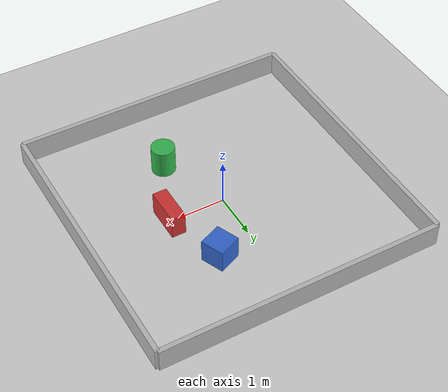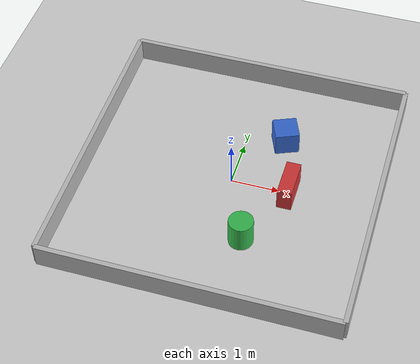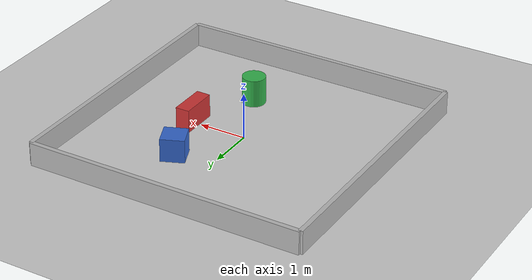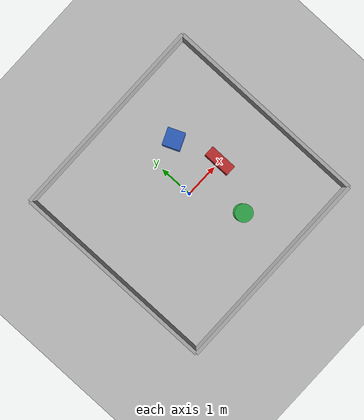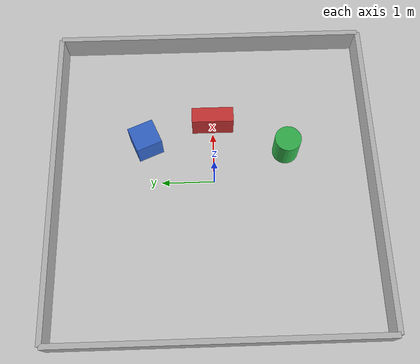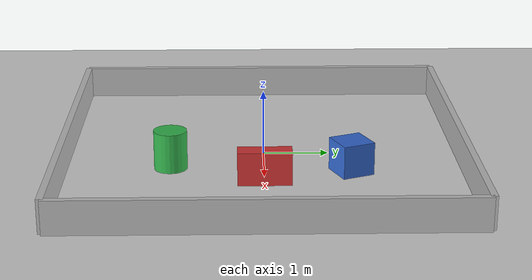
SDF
<?xml version="1.0"?>
<sdf version="1.6">
  <world name="obstacle_world">
    <include><uri>model://sun</uri></include>
    <include><uri>model://ground_plane</uri></include>
    <plugin name="gazebo_ros_init" filename="libgazebo_ros_init.so"/>
    <plugin name="gazebo_ros_factory" filename="libgazebo_ros_factory.so"/>
    <physics type="ode">
      <max_step_size>0.001</max_step_size>
      <real_time_factor>1.0</real_time_factor>
    </physics>
    <gui><camera name="user_camera"><pose>-3 -4 3 0 0.5 0.9</pose></camera></gui>

    <!-- Box straight ahead of the robot (robot starts at 0,0 facing +X) -->
    <model name="box_front"><static>true</static><pose>1.2 0 0.25 0 0 0</pose>
      <link name="l"><collision name="c"><geometry><box><size>0.3 0.8 0.5</size></box></geometry></collision>
      <visual name="v"><geometry><box><size>0.3 0.8 0.5</size></box></geometry>
      <material><ambient>0.8 0.2 0.2 1</ambient><diffuse>0.8 0.2 0.2 1</diffuse></material></visual></link></model>

    <model name="box_left"><static>true</static><pose>0.8 1.3 0.25 0 0 0.4</pose>
      <link name="l"><collision name="c"><geometry><box><size>0.5 0.5 0.5</size></box></geometry></collision>
      <visual name="v"><geometry><box><size>0.5 0.5 0.5</size></box></geometry>
      <material><ambient>0.2 0.4 0.8 1</ambient><diffuse>0.2 0.4 0.8 1</diffuse></material></visual></link></model>

    <model name="cylinder_right"><static>true</static><pose>0.6 -1.4 0.3 0 0 0</pose>
      <link name="l"><collision name="c"><geometry><cylinder><radius>0.25</radius><length>0.6</length></cylinder></geometry></collision>
      <visual name="v"><geometry><cylinder><radius>0.25</radius><length>0.6</length></cylinder></geometry>
      <material><ambient>0.2 0.7 0.3 1</ambient><diffuse>0.2 0.7 0.3 1</diffuse></material></visual></link></model>

    <!-- Four boundary walls (about 6 m x 6 m arena) -->
    <model name="wall_north"><static>true</static><pose>0 3 0.25 0 0 0</pose>
      <link name="l"><collision name="c"><geometry><box><size>6 0.1 0.5</size></box></geometry></collision>
      <visual name="v"><geometry><box><size>6 0.1 0.5</size></box></geometry></visual></link></model>
    <model name="wall_south"><static>true</static><pose>0 -3 0.25 0 0 0</pose>
      <link name="l"><collision name="c"><geometry><box><size>6 0.1 0.5</size></box></geometry></collision>
      <visual name="v"><geometry><box><size>6 0.1 0.5</size></box></geometry></visual></link></model>
    <model name="wall_east"><static>true</static><pose>3 0 0.25 0 0 0</pose>
      <link name="l"><collision name="c"><geometry><box><size>0.1 6 0.5</size></box></geometry></collision>
      <visual name="v"><geometry><box><size>0.1 6 0.5</size></box></geometry></visual></link></model>
    <model name="wall_west"><static>true</static><pose>-3 0 0.25 0 0 0</pose>
      <link name="l"><collision name="c"><geometry><box><size>0.1 6 0.5</size></box></geometry></collision>
      <visual name="v"><geometry><box><size>0.1 6 0.5</size></box></geometry></visual></link></model>
  </world>
</sdf>
